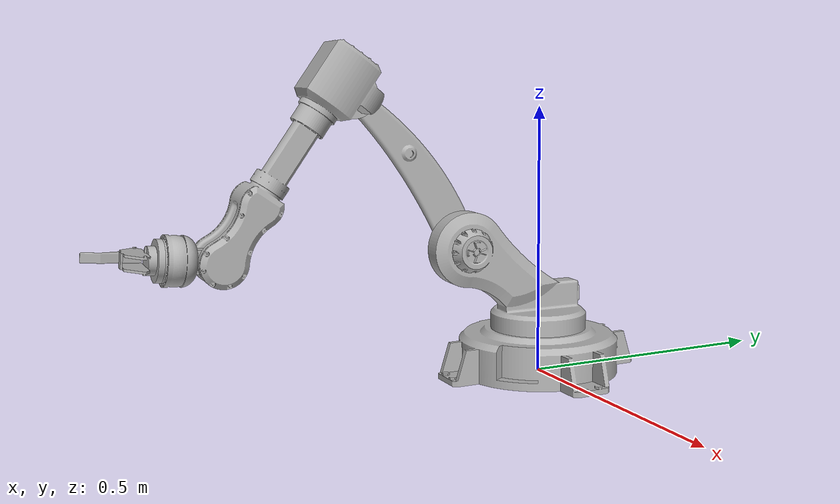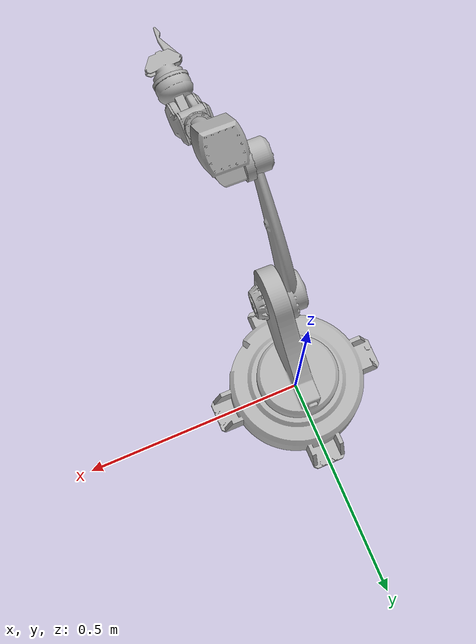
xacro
<?xml version="1.0" ?>
<robot name="Robotic" xmlns:xacro="http://www.ros.org/wiki/xacro">

<xacro:include filename="$(find Robotic_description)/urdf/materials.xacro" />
<xacro:include filename="$(find Robotic_description)/urdf/Robotic.trans" />
<xacro:include filename="$(find Robotic_description)/urdf/Robotic.gazebo" />
<link name="base_link">
  <inertial>
    <origin xyz="0.0007806396519895978 -0.0007806396451176682 0.04859351552798209" rpy="0 0 0"/>
    <mass value="12.47367775880617"/>
    <inertia ixx="0.118752" iyy="0.118752" izz="0.218412" ixy="0.000272" iyz="-0.000713" ixz="0.000713"/>
  </inertial>
  <visual>
    <origin xyz="0 0 0" rpy="0 0 0"/>
    <geometry>
      <mesh filename="package://Robotic_description/meshes/base_link.stl" scale="0.001 0.001 0.001"/>
    </geometry>
    <material name="silver"/>
  </visual>
  <collision>
    <origin xyz="0 0 0" rpy="0 0 0"/>
    <geometry>
      <mesh filename="package://Robotic_description/meshes/base_link.stl" scale="0.001 0.001 0.001"/>
    </geometry>
  </collision>
</link>

<link name="Component2_1">
  <inertial>
    <origin xyz="-0.017857616220766044 0.054057204262383085 0.06290227912529593" rpy="0 0 0"/>
    <mass value="18.09836147401845"/>
    <inertia ixx="0.177958" iyy="0.101915" izz="0.127406" ixy="0.027164" iyz="-0.067671" ixz="0.022129"/>
  </inertial>
  <visual>
    <origin xyz="-0.0 -0.0 -0.104" rpy="0 0 0"/>
    <geometry>
      <mesh filename="package://Robotic_description/meshes/Component2_1.stl" scale="0.001 0.001 0.001"/>
    </geometry>
    <material name="silver"/>
  </visual>
  <collision>
    <origin xyz="-0.0 -0.0 -0.104" rpy="0 0 0"/>
    <geometry>
      <mesh filename="package://Robotic_description/meshes/Component2_1.stl" scale="0.001 0.001 0.001"/>
    </geometry>
  </collision>
</link>

<link name="Component3_1">
  <inertial>
    <origin xyz="0.056604318197619276 -0.07232932500589419 0.1074091525160209" rpy="0 0 0"/>
    <mass value="6.899829498653834"/>
    <inertia ixx="0.13119" iyy="0.091516" izz="0.047481" ixy="0.011146" iyz="0.058201" ixz="-0.015523"/>
  </inertial>
  <visual>
    <origin xyz="0.039991 -0.144571 -0.244" rpy="0 0 0"/>
    <geometry>
      <mesh filename="package://Robotic_description/meshes/Component3_1.stl" scale="0.001 0.001 0.001"/>
    </geometry>
    <material name="silver"/>
  </visual>
  <collision>
    <origin xyz="0.039991 -0.144571 -0.244" rpy="0 0 0"/>
    <geometry>
      <mesh filename="package://Robotic_description/meshes/Component3_1.stl" scale="0.001 0.001 0.001"/>
    </geometry>
  </collision>
</link>

<link name="Component4_1">
  <inertial>
    <origin xyz="-0.037229257165138384 0.04065002788003971 0.018985873388544516" rpy="0 0 0"/>
    <mass value="9.99270875492589"/>
    <inertia ixx="0.048518" iyy="0.021455" izz="0.043108" ixy="0.00925" iyz="0.012379" ixz="-0.002929"/>
  </inertial>
  <visual>
    <origin xyz="-0.013479 0.048728 -0.530839" rpy="0 0 0"/>
    <geometry>
      <mesh filename="package://Robotic_description/meshes/Component4_1.stl" scale="0.001 0.001 0.001"/>
    </geometry>
    <material name="silver"/>
  </visual>
  <collision>
    <origin xyz="-0.013479 0.048728 -0.530839" rpy="0 0 0"/>
    <geometry>
      <mesh filename="package://Robotic_description/meshes/Component4_1.stl" scale="0.001 0.001 0.001"/>
    </geometry>
  </collision>
</link>

<link name="Component5_1">
  <inertial>
    <origin xyz="-0.023811169806457685 0.086081337946948 -0.04461041482865563" rpy="0 0 0"/>
    <mass value="4.896548707938915"/>
    <inertia ixx="0.015432" iyy="0.007725" izz="0.01393" ixy="0.00265" iyz="0.004658" ixz="-0.00068"/>
  </inertial>
  <visual>
    <origin xyz="0.065803 -0.136774 -0.481281" rpy="0 0 0"/>
    <geometry>
      <mesh filename="package://Robotic_description/meshes/Component5_1.stl" scale="0.001 0.001 0.001"/>
    </geometry>
    <material name="silver"/>
  </visual>
  <collision>
    <origin xyz="0.065803 -0.136774 -0.481281" rpy="0 0 0"/>
    <geometry>
      <mesh filename="package://Robotic_description/meshes/Component5_1.stl" scale="0.001 0.001 0.001"/>
    </geometry>
  </collision>
</link>

<link name="Component6_1">
  <inertial>
    <origin xyz="-0.06333818594644106 0.00042092014078587425 -0.5167934992969501" rpy="0 0 0"/>
    <mass value="2.4502212088594084"/>
    <inertia ixx="0.002207" iyy="0.002455" izz="0.002101" ixy="-0.000158" iyz="-0.000176" ixz="-0.000392"/>
  </inertial>
  <visual>
    <origin xyz="0.002672 -0.290546 -0.970153" rpy="0 0 0"/>
    <geometry>
      <mesh filename="package://Robotic_description/meshes/Component6_1.stl" scale="0.001 0.001 0.001"/>
    </geometry>
    <material name="silver"/>
  </visual>
  <collision>
    <origin xyz="0.002672 -0.290546 -0.970153" rpy="0 0 0"/>
    <geometry>
      <mesh filename="package://Robotic_description/meshes/Component6_1.stl" scale="0.001 0.001 0.001"/>
    </geometry>
  </collision>
</link>

<link name="Component7_1">
  <inertial>
    <origin xyz="0.005170200721439387 0.002413878066284958 0.005899955125538814" rpy="0 0 0"/>
    <mass value="0.6310459992286263"/>
    <inertia ixx="0.000349" iyy="0.000311" izz="0.000335" ixy="-9e-06" iyz="1.7e-05" ixz="-1e-05"/>
  </inertial>
  <visual>
    <origin xyz="0.038086 -0.304001 -0.485222" rpy="0 0 0"/>
    <geometry>
      <mesh filename="package://Robotic_description/meshes/Component7_1.stl" scale="0.001 0.001 0.001"/>
    </geometry>
    <material name="silver"/>
  </visual>
  <collision>
    <origin xyz="0.038086 -0.304001 -0.485222" rpy="0 0 0"/>
    <geometry>
      <mesh filename="package://Robotic_description/meshes/Component7_1.stl" scale="0.001 0.001 0.001"/>
    </geometry>
  </collision>
</link>

<link name="Component8_Mirror__1">
  <inertial>
    <origin xyz="0.009343421801771373 0.02316394746506706 -0.022928258768890597" rpy="0 0 0"/>
    <mass value="0.17272823257156844"/>
    <inertia ixx="0.000115" iyy="2.2e-05" izz="0.000111" ixy="-2.2e-05" iyz="2.8e-05" ixz="6e-06"/>
  </inertial>
  <visual>
    <origin xyz="0.036895 -0.278425 -0.526488" rpy="0 0 0"/>
    <geometry>
      <mesh filename="package://Robotic_description/meshes/Component8_Mirror__1.stl" scale="0.001 0.001 0.001"/>
    </geometry>
    <material name="silver"/>
  </visual>
  <collision>
    <origin xyz="0.036895 -0.278425 -0.526488" rpy="0 0 0"/>
    <geometry>
      <mesh filename="package://Robotic_description/meshes/Component8_Mirror__1.stl" scale="0.001 0.001 0.001"/>
    </geometry>
  </collision>
</link>

<joint name="Revolute 2" type="continuous">
  <origin xyz="0.0 0.0 0.104" rpy="0 0 0"/>
  <parent link="base_link"/>
  <child link="Component2_1"/>
  <axis xyz="0.0 0.0 1.0"/>
</joint>

<joint name="Revolute 3" type="continuous">
  <origin xyz="-0.039991 0.144571 0.14" rpy="0 0 0"/>
  <parent link="Component2_1"/>
  <child link="Component3_1"/>
  <axis xyz="0.963805 0.266607 -0.0"/>
</joint>

<joint name="Revolute 4" type="continuous">
  <origin xyz="0.05347 -0.193299 0.286839" rpy="0 0 0"/>
  <parent link="Component3_1"/>
  <child link="Component4_1"/>
  <axis xyz="-0.963805 -0.266607 0.0"/>
</joint>

<joint name="Revolute 5" type="continuous">
  <origin xyz="-0.079282 0.185502 -0.049558" rpy="0 0 0"/>
  <parent link="Component4_1"/>
  <child link="Component5_1"/>
  <axis xyz="-0.23851 0.862233 -0.446842"/>
</joint>

<joint name="Revolute 6" type="continuous">
  <origin xyz="0.063131 0.153772 0.488872" rpy="0 0 0"/>
  <parent link="Component5_1"/>
  <child link="Component6_1"/>
  <axis xyz="0.769673 -0.112756 -0.628402"/>
</joint>

<joint name="Revolute 7" type="continuous">
  <origin xyz="-0.035414 0.013455 -0.484931" rpy="0 0 0"/>
  <parent link="Component6_1"/>
  <child link="Component7_1"/>
  <axis xyz="0.629954 0.294053 0.718812"/>
</joint>

<joint name="Revolute 9" type="continuous">
  <origin xyz="0.001191 -0.025576 0.041266" rpy="0 0 0"/>
  <parent link="Component7_1"/>
  <child link="Component8_Mirror__1"/>
  <axis xyz="0.772702 -0.330305 -0.542061"/>
</joint>

</robot>

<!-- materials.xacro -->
<robot name="Robotic" xmlns:xacro="http://www.ros.org/wiki/xacro" >

<material name="silver">
  <color rgba="0.700 0.700 0.700 1.000"/>
</material>

</robot>

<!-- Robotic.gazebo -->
<robot name="Robotic" xmlns:xacro="http://www.ros.org/wiki/xacro" >

<xacro:property name="body_color" value="Gazebo/Silver" />

<gazebo>
  <plugin name="control" filename="libgazebo_ros_control.so"/>
</gazebo>
<gazebo reference="base_link">
  <material>${body_color}</material>
  <mu1>0.2</mu1>
  <mu2>0.2</mu2>
  <selfCollide>true</selfCollide>
  <gravity>true</gravity>
</gazebo>

<gazebo reference="Component2_1">
  <material>${body_color}</material>
  <mu1>0.2</mu1>
  <mu2>0.2</mu2>
  <selfCollide>true</selfCollide>
</gazebo>

<gazebo reference="Component3_1">
  <material>${body_color}</material>
  <mu1>0.2</mu1>
  <mu2>0.2</mu2>
  <selfCollide>true</selfCollide>
</gazebo>

<gazebo reference="Component4_1">
  <material>${body_color}</material>
  <mu1>0.2</mu1>
  <mu2>0.2</mu2>
  <selfCollide>true</selfCollide>
</gazebo>

<gazebo reference="Component5_1">
  <material>${body_color}</material>
  <mu1>0.2</mu1>
  <mu2>0.2</mu2>
  <selfCollide>true</selfCollide>
</gazebo>

<gazebo reference="Component6_1">
  <material>${body_color}</material>
  <mu1>0.2</mu1>
  <mu2>0.2</mu2>
  <selfCollide>true</selfCollide>
</gazebo>

<gazebo reference="Component7_1">
  <material>${body_color}</material>
  <mu1>0.2</mu1>
  <mu2>0.2</mu2>
  <selfCollide>true</selfCollide>
</gazebo>

<gazebo reference="Component8_Mirror__1">
  <material>${body_color}</material>
  <mu1>0.2</mu1>
  <mu2>0.2</mu2>
  <selfCollide>true</selfCollide>
</gazebo>

</robot>
